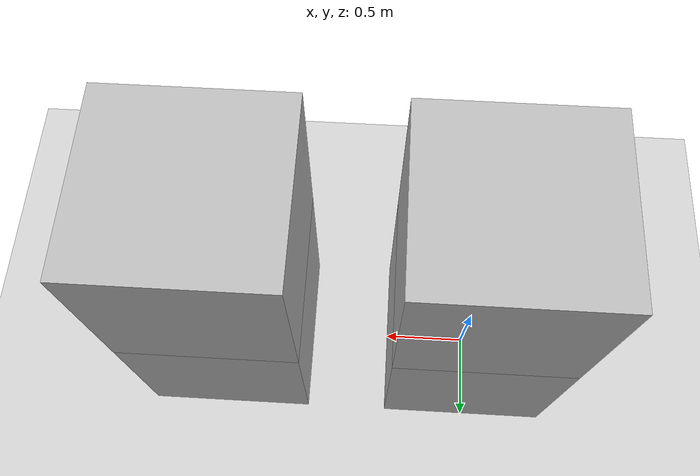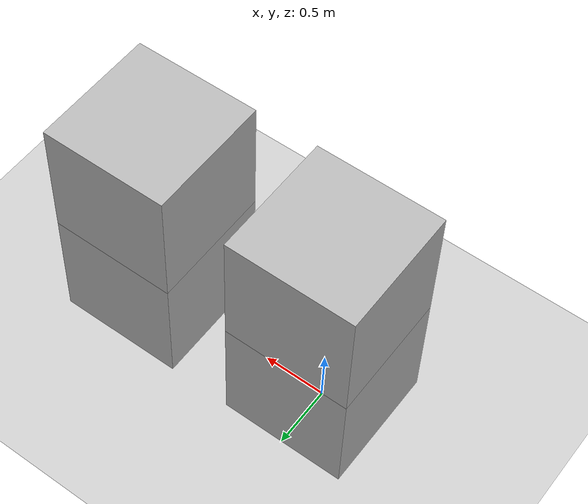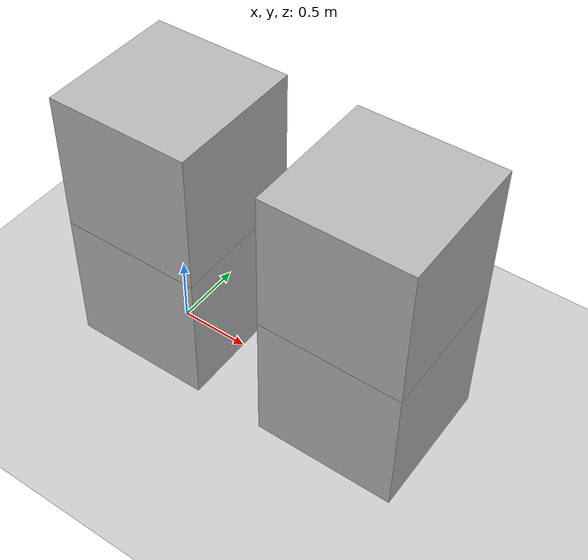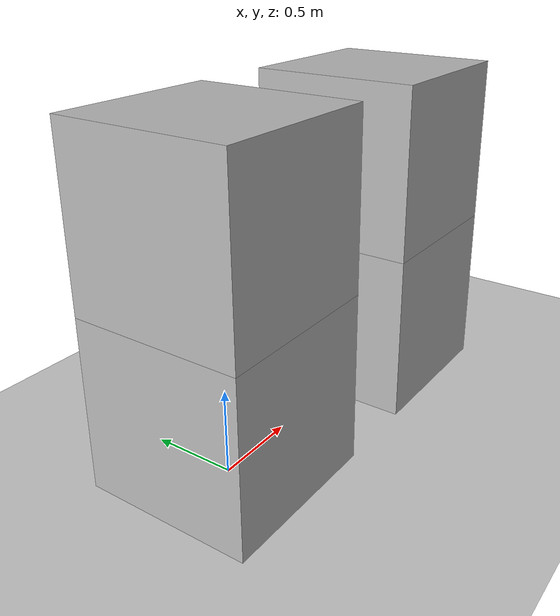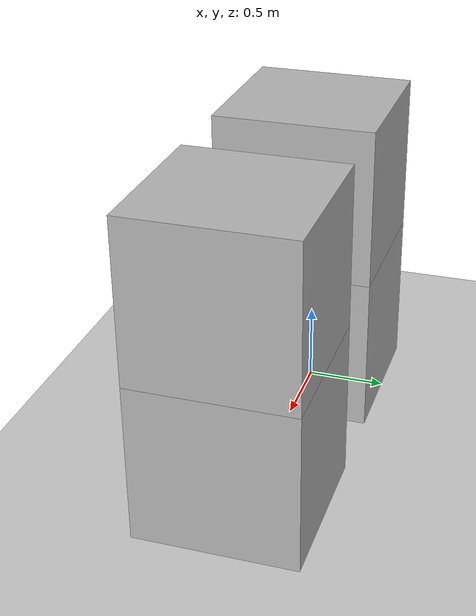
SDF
<?xml version="1.0" ?>
<sdf version="1.5">
  <world name="default">
    <include>
      <uri>model://sun</uri>
    </include>

    <physics type="ode">
      <gravity>0.000000 0.000000 -9.810000</gravity>
      <ode>
        <solver>
          <type>quick</type>
          <iters>50</iters>
          <precon_iters>0</precon_iters>
          <sor>1.000000</sor>
        </solver>
        <constraints>
          <cfm>0.000000</cfm>
          <erp>1.000000</erp>
          <contact_max_correcting_vel>100.000000</contact_max_correcting_vel>
          <contact_surface_layer>0.01000</contact_surface_layer>
        </constraints>
      </ode>
      <bullet>
        <solver>
          <type>sequential_impulse</type>
          <iters>50</iters>
          <sor>1.000000</sor>
        </solver>
        <constraints>
          <cfm>0.000000</cfm>
          <erp>0.200000</erp>
          <split_impulse>true</split_impulse>
          <split_impulse_penetration_threshold>-0.01</split_impulse_penetration_threshold>
          <contact_surface_layer>0.00000</contact_surface_layer>
        </constraints>
      </bullet>
      <real_time_update_rate>0.000000</real_time_update_rate>
      <max_step_size>0.001</max_step_size>
    </physics>
    <model name="box_cg_center_bottom">
      <pose>0.0 0.0 0.5 0.0 0.0 0.0</pose>
      <allow_auto_disable>false</allow_auto_disable>
      <link name="link">
        <inertial>
          <pose>0 0 0 0 0 0</pose>
          <mass>0.05</mass>
          <inertia>
            <ixx>0.00833</ixx>
            <iyy>0.00833</iyy>
            <izz>0.00833</izz>
          </inertia>
        </inertial>
        <visual name="visual">
          <geometry>
            <box>
              <size>1.0 1.0 1.0</size>
            </box>
          </geometry>
        </visual>
        <collision name="collision">
          <geometry>
            <box>
              <size>1.0 1.0 1.0</size>
            </box>
          </geometry>
          <surface>
            <contact>
              <ode>
                <max_vel>0.1</max_vel>
                <min_depth>0.001</min_depth>
              </ode>
            </contact>
            <friction>
              <ode>
                <mu>1.0</mu>
                <mu2>1.0</mu2>
              </ode>
            </friction>
          </surface>

        </collision>
      </link>
    </model>

    <model name="box_cg_offset_top">
      <pose>0.0 0.0 1.5 0.0 0.0 0.0</pose>
      <allow_auto_disable>false</allow_auto_disable>
      <link name="link">
        <inertial>
          <pose>0.45 0 0 0 0 0</pose>
          <mass>0.05</mass>
          <inertia>
            <ixx>0.00833</ixx>
            <iyy>0.00833</iyy>
            <izz>0.00833</izz>
          </inertia>
        </inertial>
        <visual name="visual">
          <geometry>
            <box>
              <size>1.0 1.0 1.0</size>
            </box>
          </geometry>
        </visual>
        <collision name="collision">
          <geometry>
            <box>
              <size>1.0 1.0 1.0</size>
            </box>
          </geometry>
          <surface>
            <contact>
              <ode>
                <max_vel>0.1</max_vel>
                <min_depth>0.001</min_depth>
              </ode>
            </contact>
            <friction>
              <ode>
                <mu>1.0</mu>
                <mu2>1.0</mu2>
              </ode>
            </friction>
          </surface>

        </collision>
      </link>
    </model>

    <model name="ground_plane">
      <static>true</static>
      <link name="link">
        <collision name="collision">
          <geometry>
            <plane>
              <normal>0 0 1</normal>
              <size>100 100</size>
            </plane>
          </geometry>
          <surface>
            <friction>
              <ode>
                <mu>1.0</mu>
                <mu2>1.0</mu2>
              </ode>
            </friction>
          </surface>
        </collision>
        <visual name="visual">
          <cast_shadows>false</cast_shadows>
          <geometry>
            <plane>
              <normal>0 0 1</normal>
              <size>100 100</size>
            </plane>
          </geometry>
          <material>
            <script>
              <uri>file://media/materials/scripts/gazebo.material</uri>
              <name>Gazebo/Grey</name>
            </script>
          </material>
        </visual>
      </link>
    </model>

    <model name="box_cg_center_top">
      <pose>1.5 0.0 1.5 0.0 0.0 0.0</pose>
      <allow_auto_disable>false</allow_auto_disable>
      <link name="link">
        <inertial>
          <pose>0 0 0 0 0 0</pose>
          <mass>0.05</mass>
          <inertia>
            <ixx>0.00833</ixx>
            <iyy>0.00833</iyy>
            <izz>0.00833</izz>
          </inertia>
        </inertial>
        <visual name="visual">
          <geometry>
            <box>
              <size>1.0 1.0 1.0</size>
            </box>
          </geometry>
        </visual>
        <collision name="collision">
          <geometry>
            <box>
              <size>1.0 1.0 1.0</size>
            </box>
          </geometry>
          <surface>
            <contact>
              <ode>
                <max_vel>0.1</max_vel>
                <min_depth>0.001</min_depth>
              </ode>
            </contact>
            <friction>
              <ode>
                <mu>1.0</mu>
                <mu2>1.0</mu2>
              </ode>
            </friction>
          </surface>

        </collision>
      </link>
    </model>

    <model name="box_cg_offset_bottom">
      <pose>1.5 0.0 0.5 0.0 0.0 0.0</pose>
      <allow_auto_disable>false</allow_auto_disable>
      <link name="link">
        <inertial>
          <pose>0.45 0 0 0 0 0</pose>
          <mass>0.05</mass>
          <inertia>
            <ixx>0.00833</ixx>
            <iyy>0.00833</iyy>
            <izz>0.00833</izz>
          </inertia>
        </inertial>
        <visual name="visual">
          <geometry>
            <box>
              <size>1.0 1.0 1.0</size>
            </box>
          </geometry>
        </visual>
        <collision name="collision">
          <geometry>
            <box>
              <size>1.0 1.0 1.0</size>
            </box>
          </geometry>
          <surface>
            <contact>
              <ode>
                <max_vel>0.1</max_vel>
                <min_depth>0.001</min_depth>
              </ode>
            </contact>
            <friction>
              <ode>
                <mu>1.0</mu>
                <mu2>1.0</mu2>
              </ode>
            </friction>
          </surface>

        </collision>
      </link>
    </model>

  </world>
</sdf>
